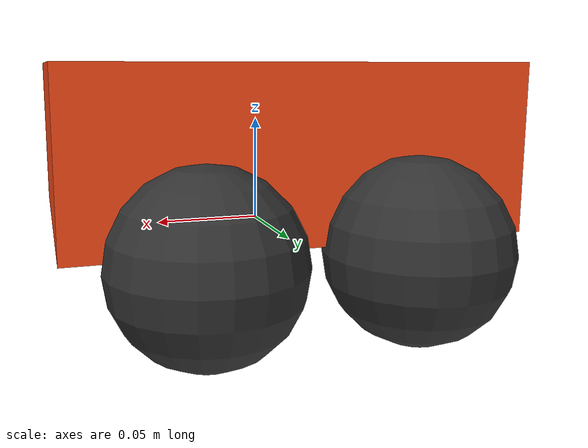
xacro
<?xml version="1.0"?>
<robot xmlns:xacro="http://wiki.ros.org/xacro" name="$(arg bennis_model)">
    <xacro:arg name="bennis_model" default="bennis" />
    <xacro:arg name="prefix" default="" />
    <xacro:arg name="gazebo_ignition" default="false" />

    <xacro:include filename="$(find bennis_description)/urdf/bennis_macro.xacro" />

    <xacro:bennis_robot prefix="$(arg prefix)" gazebo_ignition="$(arg gazebo_ignition)">
        <origin xyz="0 0 0" rpy="0 0 0" />
    </xacro:bennis_robot>

    <xacro:include filename="bennis.ros2_control.xacro" />

</robot>

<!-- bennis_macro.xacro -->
<robot xmlns:xacro="http://wiki.ros.org/xacro">

  <xacro:include filename="$(find bennis_description)/urdf/inertial_macros.xacro" />
  <xacro:include filename="$(find bennis_description)/urdf/mecanum_wheel_macros.xacro" />

  <xacro:property name="chassis_length" value="0.200" />
  <xacro:property name="chassis_width" value="0.155" />
  <xacro:property name="chassis_height" value="0.075" />
  <xacro:property name="chassis_mass" value="1.0" />
  <xacro:property name="wheel_radius" value="0.040" />
  <xacro:property name="wheel_thickness" value="0.036" />
  <xacro:property name="wheel_mass" value="0.05" />
  <xacro:property name="wheel_offset_x" value="0.045" />
  <xacro:property name="wheel_offset_y" value="0.084" />
  <xacro:property name="wheel_offset_z" value="0.000" />

  <material name="white">
    <color rgba="1 1 1 1" />
  </material>

  <material name="orange">
    <color rgba="1 0.3 0.1 1" />
  </material>

  <material name="blue">
    <color rgba="0.2 0.2 1 1" />
  </material>

  <material name="black">
    <color rgba="0 0 0 1" />
  </material>

  <material name="red">
    <color rgba="1 0 0 1" />
  </material>

  <xacro:macro name="bennis_robot" params="
    prefix
    gazebo_ignition
    *origin
  ">

    <link name="${prefix}base_footprint">
    </link>

    <!-- BASE_FOOTPRINT LINK -->

    <joint name="${prefix}base_footprint_joint" type="fixed">
      <xacro:insert_block name="origin" />
      <parent link="${prefix}base_footprint" />
      <child link="${prefix}base_link" />
    </joint>

    <!-- BASE LINK -->
    <link name="${prefix}base_link">
    </link>

    <xacro:bennis_mecanum_wheel prefix="${prefix}right_" parent="${prefix}base_link" reflect="false" hq="false" gazebo_ignition="${gazebo_ignition}"
    xyz="${wheel_offset_x} -${wheel_offset_y} ${wheel_offset_z}">
    </xacro:bennis_mecanum_wheel>

    <xacro:bennis_mecanum_wheel prefix="${prefix}left_" parent="${prefix}base_link" reflect="true" hq="false" gazebo_ignition="${gazebo_ignition}"
    xyz="${wheel_offset_x} ${wheel_offset_y} ${wheel_offset_z}">
    </xacro:bennis_mecanum_wheel>

    <xacro:bennis_mecanum_wheel prefix="${prefix}left_back_" parent="${prefix}base_link" reflect="false" hq="false" gazebo_ignition="${gazebo_ignition}"
    xyz="-${wheel_offset_x} ${wheel_offset_y} ${wheel_offset_z}">
    </xacro:bennis_mecanum_wheel>

    <xacro:bennis_mecanum_wheel prefix="${prefix}right_back_" parent="${prefix}base_link" reflect="true" hq="false" gazebo_ignition="${gazebo_ignition}"
    xyz="-${wheel_offset_x} -${wheel_offset_y} ${wheel_offset_z}">
    </xacro:bennis_mecanum_wheel>

    <!-- CHASSIS LINK -->

    <joint name="${prefix}chassis_joint" type="fixed">
      <parent link="${prefix}base_link" />
      <child link="${prefix}chassis" />
      <origin xyz="0 0 0" />
    </joint>

    <link name="${prefix}chassis">
      <visual>
        <origin xyz="0 0 ${wheel_radius}" />
        <geometry>
          <box size="${chassis_length} ${chassis_width} ${chassis_height}" />
        </geometry>
        <material name="orange" />
      </visual>
      <collision>
        <origin xyz="0 0 ${wheel_radius}" />
        <geometry>
          <box size="${chassis_length} ${chassis_width} ${chassis_height}" />
        </geometry>
      </collision>
      <xacro:inertial_box mass="0.5" x="${chassis_length}" y="${chassis_width}"
        z="${chassis_height}">
        <origin xyz="0 0 ${wheel_radius}" rpy="0 0 0" />
      </xacro:inertial_box>
    </link>

    <gazebo reference="${prefix}chassis">
      <material>Gazebo/Orange</material>
    </gazebo>

  </xacro:macro>
</robot>

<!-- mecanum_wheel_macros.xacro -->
<robot name="wheel" xmlns:xacro="http://wiki.ros.org/xacro" xmlns:gz="http://gazebosim.org/schema">

    <xacro:property name="M_PI" value="3.1415926535897931" />
    <!-- Wheels -->
    <xacro:property name="mecanum_wheel_radius" value="0.040" />
    <xacro:property name="mecanum_wheel_height" value="0.036" />
    <xacro:property name="mecanum_wheel_mass" value="0.5" /> <!-- in kg-->

    <xacro:macro name="cylinder_inertia" params="m r h">
        <inertia ixx="${m*(3*r*r+h*h)/12}" ixy="0" ixz="0"
            iyy="${m*r*r/2}" iyz="0"
            izz="${m*(3*r*r+h*h)/12}" />
    </xacro:macro>

    <xacro:macro name="bennis_mecanum_wheel" params="prefix parent xyz reflect hq gazebo_ignition:=false">

        <joint name="${prefix}wheel_joint" type="continuous">
            <parent link="${parent}" />
            <child link="${prefix}wheel_link" />
            <xacro:if value="${gazebo_ignition}">
                <xacro:if value="${reflect}">
                    <origin xyz="${xyz}" rpy="0.0 0.0 -${M_PI/4}"/>
                </xacro:if>
                <xacro:unless value="${reflect}">
                    <origin xyz="${xyz}" rpy="0.0 0.0 ${M_PI/4}"/>
                </xacro:unless>
            </xacro:if>
            <xacro:unless value="${gazebo_ignition}">
                <origin xyz="${xyz}" rpy="0.0 0.0 0.0"/>
            </xacro:unless>
            <limit effort="100000" velocity="100" />
            <axis xyz="0 1 0"/>
        </joint>

        <link name="${prefix}wheel_link">
            <xacro:unless value="${gazebo_ignition}">
                <visual>
                    <xacro:if value="${hq}">
                        <xacro:if value="${reflect}">
                        <origin xyz="0 0 0" rpy="0 0 0" />
                            <geometry>
                                <mesh
                                    filename="package://robotnik_description/meshes/wheels/mecanum_wheel/kairos_mecanum_wheel_1.dae" />
                            </geometry>
                        </xacro:if>
                        <xacro:unless value="${reflect}">
                        <origin xyz="0 0 0" rpy="0 0 0" />
                            <geometry>
                                <mesh
                                    filename="package://robotnik_description/meshes/wheels/mecanum_wheel/kairos_mecanum_wheel_2.dae" />
                            </geometry>
                        </xacro:unless>
                    </xacro:if>

                    <xacro:unless value="${hq}">
                        <origin xyz="0 0 0" rpy="0 0 0" />
                        <geometry>
                            <sphere radius="${mecanum_wheel_radius}" />
                        </geometry>
                    </xacro:unless>

                    <material name="darkgrey">
                        <color rgba="0.2 0.2 0.2 1" />
                    </material>
                </visual>
            </xacro:unless>

            <collision>
                <origin xyz="0 0 0" rpy="0 0 0" />
                <geometry>
                    <sphere radius="${mecanum_wheel_radius}" />
                </geometry>
            </collision>

            <inertial>
                <mass value="${mecanum_wheel_mass}" />
                <origin xyz="0 0 0" />
                <xacro:cylinder_inertia m="${mecanum_wheel_mass}" r="${mecanum_wheel_radius}"
                    h="${mecanum_wheel_height}" />
            </inertial>
        </link>

        <xacro:if value="${gazebo_ignition}">
            <gazebo reference="${prefix}wheel_link">
                <collision>
                    <surface>
                        <friction>
                            <ode>
                                <mu>1.0</mu>
                                <mu2>0.0</mu2>
                                <xacro:if value="${reflect}">
                                    <fdir1 gz:expressed_in="${parent}">1 0 0</fdir1>
                                </xacro:if>
                                <xacro:unless value="${reflect}">
                                    <fdir1 gz:expressed_in="${parent}">1 0 0</fdir1>
                                </xacro:unless>
                            </ode>
                        </friction>
                    </surface>
                </collision>
            </gazebo>

            <joint name="${prefix}visual_wheel_joint" type="fixed">
                <parent link="${parent}" />
                <child link="${prefix}visual_wheel_link" />
                <origin xyz="${xyz}"/>
            </joint>

            <link name="${prefix}visual_wheel_link">
                <visual>
                    <xacro:if value="${hq}">
                        <xacro:if value="${reflect}">
                        <origin xyz="0 0 0" rpy="0 0 0" />
                            <geometry>
                                <mesh
                                    filename="package://robotnik_description/meshes/wheels/mecanum_wheel/kairos_mecanum_wheel_1.dae" />
                            </geometry>
                        </xacro:if>
                        <xacro:unless value="${reflect}">
                        <origin xyz="0 0 0" rpy="0 0 0" />
                            <geometry>
                                <mesh
                                    filename="package://robotnik_description/meshes/wheels/mecanum_wheel/kairos_mecanum_wheel_2.dae" />
                            </geometry>
                        </xacro:unless>
                    </xacro:if>

                    <xacro:unless value="${hq}">
                        <origin xyz="0 0 0" rpy="0 0 0" />
                        <geometry>
                            <sphere radius="${mecanum_wheel_radius}" />
                        </geometry>
                    </xacro:unless>

                    <material name="darkgrey">
                        <color rgba="0.2 0.2 0.2 1" />
                    </material>
                </visual>
            </link>
        </xacro:if>

    </xacro:macro>
</robot>
